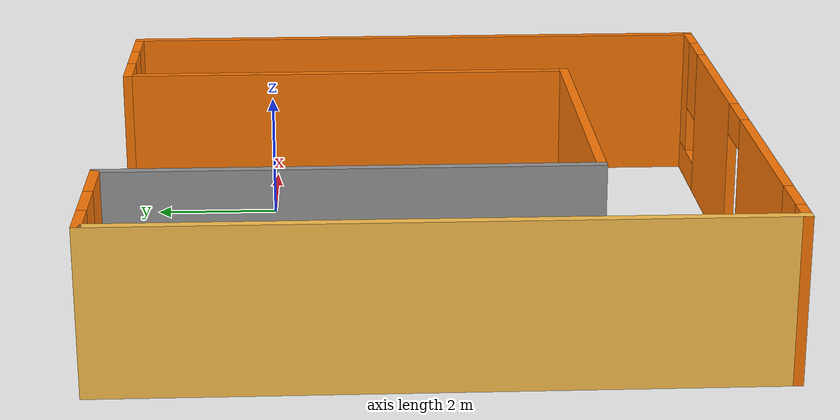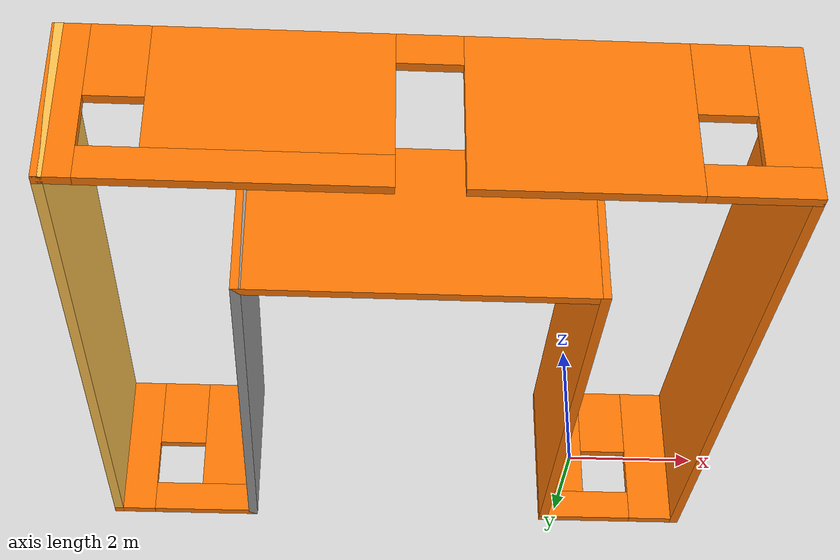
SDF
<?xml version='1.0'?>
<sdf version='1.6'>
  <model name='house'>
    <pose frame=''>-2.72178 -2.50719 0 0 -0 0</pose>
    <link name='Wall_22'>
      <collision name='Wall_22_Collision'>
        <geometry>
          <box>
            <size>10 0.15 2.5</size>
          </box>
        </geometry>
        <pose frame=''>0 0 1.25 0 -0 0</pose>
      </collision>
      <visual name='Wall_22_Visual'>
        <pose frame=''>0 0 1.25 0 -0 0</pose>
        <geometry>
          <box>
            <size>10 0.15 2.5</size>
          </box>
        </geometry>
        <material>
          <script>
            <uri>file://media/materials/scripts/gazebo.material</uri>
            <name>Gazebo/Grey</name>
          </script>
          <ambient>1 0.764706 0.305882 1</ambient>
        </material>
        <meta>
          <layer>0</layer>
        </meta>
      </visual>
      <pose frame=''>-4.92478 -0.000192 0 0 -0 1.5708</pose>
    </link>
    <link name='Wall_30'>
      <pose frame=''>0 -4.925 0 0 -0 3.9e-05</pose>
      <visual name='Wall_30_Visual_0'>
        <pose frame=''>-4.74427 0 1.25 0 -0 0</pose>
        <geometry>
          <box>
            <size>0.511454 0.15 2.5</size>
          </box>
        </geometry>
        <material>
          <script>
            <uri>file://media/materials/scripts/gazebo.material</uri>
            <name>Gazebo/Grey</name>
          </script>
          <ambient>0.996078 0.47451 0.0196078 1</ambient>
        </material>
        <meta>
          <layer>0</layer>
        </meta>
      </visual>
      <collision name='Wall_30_Collision_0'>
        <geometry>
          <box>
            <size>0.511454 0.15 2.5</size>
          </box>
        </geometry>
        <pose frame=''>-4.74427 0 1.25 0 -0 0</pose>
      </collision>
      <visual name='Wall_30_Visual_1'>
        <pose frame=''>1.95041 0 1.25 0 -0 0</pose>
        <geometry>
          <box>
            <size>3.03595 0.15 2.5</size>
          </box>
        </geometry>
        <material>
          <script>
            <uri>file://media/materials/scripts/gazebo.material</uri>
            <name>Gazebo/Grey</name>
          </script>
          <ambient>0.996078 0.47451 0.0196078 1</ambient>
        </material>
        <meta>
          <layer>0</layer>
        </meta>
      </visual>
      <collision name='Wall_30_Collision_1'>
        <geometry>
          <box>
            <size>3.03595 0.15 2.5</size>
          </box>
        </geometry>
        <pose frame=''>1.95041 0 1.25 0 -0 0</pose>
      </collision>
      <visual name='Wall_30_Visual_2'>
        <pose frame=''>-2.47805 0 0.25 0 -0 0</pose>
        <geometry>
          <box>
            <size>4.02099 0.15 0.5</size>
          </box>
        </geometry>
        <material>
          <script>
            <uri>file://media/materials/scripts/gazebo.material</uri>
            <name>Gazebo/Grey</name>
          </script>
          <ambient>0.996078 0.47451 0.0196078 1</ambient>
        </material>
        <meta>
          <layer>0</layer>
        </meta>
      </visual>
      <collision name='Wall_30_Collision_2'>
        <geometry>
          <box>
            <size>4.02099 0.15 0.5</size>
          </box>
        </geometry>
        <pose frame=''>-2.47805 0 0.25 0 -0 0</pose>
      </collision>
      <visual name='Wall_30_Visual_3'>
        <pose frame=''>4.23419 0 0.25 0 -0 0</pose>
        <geometry>
          <box>
            <size>1.53161 0.15 0.5</size>
          </box>
        </geometry>
        <material>
          <script>
            <uri>file://media/materials/scripts/gazebo.material</uri>
            <name>Gazebo/Grey</name>
          </script>
          <ambient>0.996078 0.47451 0.0196078 1</ambient>
        </material>
        <meta>
          <layer>0</layer>
        </meta>
      </visual>
      <collision name='Wall_30_Collision_3'>
        <geometry>
          <box>
            <size>1.53161 0.15 0.5</size>
          </box>
        </geometry>
        <pose frame=''>4.23419 0 0.25 0 -0 0</pose>
      </collision>
      <visual name='Wall_30_Visual_4'>
        <pose frame=''>-2.07805 0 1.5 0 -0 0</pose>
        <geometry>
          <box>
            <size>3.22099 0.15 2</size>
          </box>
        </geometry>
        <material>
          <script>
            <uri>file://media/materials/scripts/gazebo.material</uri>
            <name>Gazebo/Grey</name>
          </script>
          <ambient>0.996078 0.47451 0.0196078 1</ambient>
        </material>
        <meta>
          <layer>0</layer>
        </meta>
      </visual>
      <collision name='Wall_30_Collision_4'>
        <geometry>
          <box>
            <size>3.22099 0.15 2</size>
          </box>
        </geometry>
        <pose frame=''>-2.07805 0 1.5 0 -0 0</pose>
      </collision>
      <visual name='Wall_30_Visual_5'>
        <pose frame=''>-2.07805 0 1.5 0 -0 0</pose>
        <geometry>
          <box>
            <size>3.22099 0.15 2</size>
          </box>
        </geometry>
        <material>
          <script>
            <uri>file://media/materials/scripts/gazebo.material</uri>
            <name>Gazebo/Grey</name>
          </script>
          <ambient>0.996078 0.47451 0.0196078 1</ambient>
        </material>
        <meta>
          <layer>0</layer>
        </meta>
      </visual>
      <collision name='Wall_30_Collision_5'>
        <geometry>
          <box>
            <size>3.22099 0.15 2</size>
          </box>
        </geometry>
        <pose frame=''>-2.07805 0 1.5 0 -0 0</pose>
      </collision>
      <visual name='Wall_30_Visual_6'>
        <pose frame=''>4.63419 0 1.5 0 -0 0</pose>
        <geometry>
          <box>
            <size>0.731615 0.15 2</size>
          </box>
        </geometry>
        <material>
          <script>
            <uri>file://media/materials/scripts/gazebo.material</uri>
            <name>Gazebo/Grey</name>
          </script>
          <ambient>0.996078 0.47451 0.0196078 1</ambient>
        </material>
        <meta>
          <layer>0</layer>
        </meta>
      </visual>
      <collision name='Wall_30_Collision_6'>
        <geometry>
          <box>
            <size>0.731615 0.15 2</size>
          </box>
        </geometry>
        <pose frame=''>4.63419 0 1.5 0 -0 0</pose>
      </collision>
      <visual name='Wall_30_Visual_7'>
        <pose frame=''>-4.08855 0 1.9 0 -0 0</pose>
        <geometry>
          <box>
            <size>0.8 0.15 1.2</size>
          </box>
        </geometry>
        <material>
          <script>
            <uri>file://media/materials/scripts/gazebo.material</uri>
            <name>Gazebo/Grey</name>
          </script>
          <ambient>0.996078 0.47451 0.0196078 1</ambient>
        </material>
        <meta>
          <layer>0</layer>
        </meta>
      </visual>
      <collision name='Wall_30_Collision_7'>
        <geometry>
          <box>
            <size>0.8 0.15 1.2</size>
          </box>
        </geometry>
        <pose frame=''>-4.08855 0 1.9 0 -0 0</pose>
      </collision>
      <visual name='Wall_30_Visual_8'>
        <pose frame=''>3.86838 0 1.9 0 -0 0</pose>
        <geometry>
          <box>
            <size>0.8 0.15 1.2</size>
          </box>
        </geometry>
        <material>
          <script>
            <uri>file://media/materials/scripts/gazebo.material</uri>
            <name>Gazebo/Grey</name>
          </script>
          <ambient>0.996078 0.47451 0.0196078 1</ambient>
        </material>
        <meta>
          <layer>0</layer>
        </meta>
      </visual>
      <collision name='Wall_30_Collision_8'>
        <geometry>
          <box>
            <size>0.8 0.15 1.2</size>
          </box>
        </geometry>
        <pose frame=''>3.86838 0 1.9 0 -0 0</pose>
      </collision>
      <visual name='Wall_30_Visual_9'>
        <pose frame=''>-0.01756 0 2.25 0 -0 0</pose>
        <geometry>
          <box>
            <size>0.9 0.15 0.5</size>
          </box>
        </geometry>
        <material>
          <script>
            <uri>file://media/materials/scripts/gazebo.material</uri>
            <name>Gazebo/Grey</name>
          </script>
          <ambient>0.996078 0.47451 0.0196078 1</ambient>
        </material>
        <meta>
          <layer>0</layer>
        </meta>
      </visual>
      <collision name='Wall_30_Collision_9'>
        <geometry>
          <box>
            <size>0.9 0.15 0.5</size>
          </box>
        </geometry>
        <pose frame=''>-0.01756 0 2.25 0 -0 0</pose>
      </collision>
      <visual name='Wall_30_Visual_10'>
        <pose frame=''>-0.01756 0 2.25 0 -0 0</pose>
        <geometry>
          <box>
            <size>0.9 0.15 0.5</size>
          </box>
        </geometry>
        <material>
          <script>
            <uri>file://media/materials/scripts/gazebo.material</uri>
            <name>Gazebo/Grey</name>
          </script>
          <ambient>0.996078 0.47451 0.0196078 1</ambient>
        </material>
        <meta>
          <layer>0</layer>
        </meta>
      </visual>
      <collision name='Wall_30_Collision_10'>
        <geometry>
          <box>
            <size>0.9 0.15 0.5</size>
          </box>
        </geometry>
        <pose frame=''>-0.01756 0 2.25 0 -0 0</pose>
      </collision>
    </link>
    <link name='Wall_32'>
      <collision name='Wall_32_Collision'>
        <geometry>
          <box>
            <size>10 0.15 2.5</size>
          </box>
        </geometry>
        <pose frame=''>0 0 1.25 0 -0 0</pose>
      </collision>
      <visual name='Wall_32_Visual'>
        <pose frame=''>0 0 1.25 0 -0 0</pose>
        <geometry>
          <box>
            <size>10 0.15 2.5</size>
          </box>
        </geometry>
        <material>
          <script>
            <uri>file://media/materials/scripts/gazebo.material</uri>
            <name>Gazebo/Grey</name>
          </script>
          <ambient>0.996078 0.47451 0.0196078 1</ambient>
        </material>
        <meta>
          <layer>0</layer>
        </meta>
      </visual>
      <pose frame=''>4.92478 0.000195 0 0 -0 1.5708</pose>
    </link>
    <link name='Wall_36'>
      <pose frame=''>-3.74978 4.92481 0 0 -0 0</pose>
      <visual name='Wall_36_Visual_0'>
        <pose frame=''>-0.896568 0 1.25 0 -0 0</pose>
        <geometry>
          <box>
            <size>0.706864 0.15 2.5</size>
          </box>
        </geometry>
        <material>
          <script>
            <uri>file://media/materials/scripts/gazebo.material</uri>
            <name>Gazebo/Grey</name>
          </script>
          <ambient>0.996078 0.47451 0.0196078 1</ambient>
        </material>
        <meta>
          <layer>0</layer>
        </meta>
      </visual>
      <collision name='Wall_36_Collision_0'>
        <geometry>
          <box>
            <size>0.706864 0.15 2.5</size>
          </box>
        </geometry>
        <pose frame=''>-0.896568 0 1.25 0 -0 0</pose>
      </collision>
      <visual name='Wall_36_Visual_1'>
        <pose frame=''>0.353432 0 0.25 0 -0 0</pose>
        <geometry>
          <box>
            <size>1.79314 0.15 0.5</size>
          </box>
        </geometry>
        <material>
          <script>
            <uri>file://media/materials/scripts/gazebo.material</uri>
            <name>Gazebo/Grey</name>
          </script>
          <ambient>0.996078 0.47451 0.0196078 1</ambient>
        </material>
        <meta>
          <layer>0</layer>
        </meta>
      </visual>
      <collision name='Wall_36_Collision_1'>
        <geometry>
          <box>
            <size>1.79314 0.15 0.5</size>
          </box>
        </geometry>
        <pose frame=''>0.353432 0 0.25 0 -0 0</pose>
      </collision>
      <visual name='Wall_36_Visual_2'>
        <pose frame=''>0.753432 0 1.5 0 -0 0</pose>
        <geometry>
          <box>
            <size>0.993136 0.15 2</size>
          </box>
        </geometry>
        <material>
          <script>
            <uri>file://media/materials/scripts/gazebo.material</uri>
            <name>Gazebo/Grey</name>
          </script>
          <ambient>0.996078 0.47451 0.0196078 1</ambient>
        </material>
        <meta>
          <layer>0</layer>
        </meta>
      </visual>
      <collision name='Wall_36_Collision_2'>
        <geometry>
          <box>
            <size>0.993136 0.15 2</size>
          </box>
        </geometry>
        <pose frame=''>0.753432 0 1.5 0 -0 0</pose>
      </collision>
      <visual name='Wall_36_Visual_3'>
        <pose frame=''>-0.143136 0 1.9 0 -0 0</pose>
        <geometry>
          <box>
            <size>0.8 0.15 1.2</size>
          </box>
        </geometry>
        <material>
          <script>
            <uri>file://media/materials/scripts/gazebo.material</uri>
            <name>Gazebo/Grey</name>
          </script>
          <ambient>0.996078 0.47451 0.0196078 1</ambient>
        </material>
        <meta>
          <layer>0</layer>
        </meta>
      </visual>
      <collision name='Wall_36_Collision_3'>
        <geometry>
          <box>
            <size>0.8 0.15 1.2</size>
          </box>
        </geometry>
        <pose frame=''>-0.143136 0 1.9 0 -0 0</pose>
      </collision>
    </link>
    <link name='Wall_38'>
      <pose frame=''>3.74978 4.9252 0 0 -0 3.14159</pose>
      <visual name='Wall_38_Visual_0'>
        <pose frame=''>-0.802959 0 1.25 0 -0 0</pose>
        <geometry>
          <box>
            <size>0.894081 0.15 2.5</size>
          </box>
        </geometry>
        <material>
          <script>
            <uri>file://media/materials/scripts/gazebo.material</uri>
            <name>Gazebo/Grey</name>
          </script>
          <ambient>0.996078 0.47451 0.0196078 1</ambient>
        </material>
        <meta>
          <layer>0</layer>
        </meta>
      </visual>
      <collision name='Wall_38_Collision_0'>
        <geometry>
          <box>
            <size>0.894081 0.15 2.5</size>
          </box>
        </geometry>
        <pose frame=''>-0.802959 0 1.25 0 -0 0</pose>
      </collision>
      <visual name='Wall_38_Visual_1'>
        <pose frame=''>0.447041 0 0.25 0 -0 0</pose>
        <geometry>
          <box>
            <size>1.60592 0.15 0.5</size>
          </box>
        </geometry>
        <material>
          <script>
            <uri>file://media/materials/scripts/gazebo.material</uri>
            <name>Gazebo/Grey</name>
          </script>
          <ambient>0.996078 0.47451 0.0196078 1</ambient>
        </material>
        <meta>
          <layer>0</layer>
        </meta>
      </visual>
      <collision name='Wall_38_Collision_1'>
        <geometry>
          <box>
            <size>1.60592 0.15 0.5</size>
          </box>
        </geometry>
        <pose frame=''>0.447041 0 0.25 0 -0 0</pose>
      </collision>
      <visual name='Wall_38_Visual_2'>
        <pose frame=''>0.847041 0 1.5 0 -0 0</pose>
        <geometry>
          <box>
            <size>0.805919 0.15 2</size>
          </box>
        </geometry>
        <material>
          <script>
            <uri>file://media/materials/scripts/gazebo.material</uri>
            <name>Gazebo/Grey</name>
          </script>
          <ambient>0.996078 0.47451 0.0196078 1</ambient>
        </material>
        <meta>
          <layer>0</layer>
        </meta>
      </visual>
      <collision name='Wall_38_Collision_2'>
        <geometry>
          <box>
            <size>0.805919 0.15 2</size>
          </box>
        </geometry>
        <pose frame=''>0.847041 0 1.5 0 -0 0</pose>
      </collision>
      <visual name='Wall_38_Visual_3'>
        <pose frame=''>0.044081 0 1.9 0 -0 0</pose>
        <geometry>
          <box>
            <size>0.8 0.15 1.2</size>
          </box>
        </geometry>
        <material>
          <script>
            <uri>file://media/materials/scripts/gazebo.material</uri>
            <name>Gazebo/Grey</name>
          </script>
          <ambient>0.996078 0.47451 0.0196078 1</ambient>
        </material>
        <meta>
          <layer>0</layer>
        </meta>
      </visual>
      <collision name='Wall_38_Collision_3'>
        <geometry>
          <box>
            <size>0.8 0.15 1.2</size>
          </box>
        </geometry>
        <pose frame=''>0.044081 0 1.9 0 -0 0</pose>
      </collision>
    </link>
    <link name='Wall_40'>
      <collision name='Wall_40_Collision'>
        <geometry>
          <box>
            <size>7.5 0.15 2.5</size>
          </box>
        </geometry>
        <pose frame=''>0 0 1.25 0 -0 0</pose>
      </collision>
      <visual name='Wall_40_Visual'>
        <pose frame=''>0 0 1.25 0 -0 0</pose>
        <geometry>
          <box>
            <size>7.5 0.15 2.5</size>
          </box>
        </geometry>
        <material>
          <script>
            <uri>file://media/materials/scripts/gazebo.material</uri>
            <name>Gazebo/Grey</name>
          </script>
          <ambient>1 1 1 1</ambient>
        </material>
        <meta>
          <layer>0</layer>
        </meta>
      </visual>
      <pose frame=''>-2.57478 1.24981 0 0 0 -1.5708</pose>
    </link>
    <link name='Wall_44'>
      <collision name='Wall_44_Collision'>
        <geometry>
          <box>
            <size>7.5 0.15 2.5</size>
          </box>
        </geometry>
        <pose frame=''>0 0 1.25 0 -0 0</pose>
      </collision>
      <visual name='Wall_44_Visual'>
        <pose frame=''>0 0 1.25 0 -0 0</pose>
        <geometry>
          <box>
            <size>7.5 0.15 2.5</size>
          </box>
        </geometry>
        <material>
          <script>
            <uri>file://media/materials/scripts/gazebo.material</uri>
            <name>Gazebo/Grey</name>
          </script>
          <ambient>0.996078 0.47451 0.0196078 1</ambient>
        </material>
        <meta>
          <layer>0</layer>
        </meta>
      </visual>
      <pose frame=''>2.57478 1.25019 0 0 0 -1.5708</pose>
    </link>
    <link name='Wall_46'>
      <collision name='Wall_46_Collision'>
        <geometry>
          <box>
            <size>5.29956 0.15 2.5</size>
          </box>
        </geometry>
        <pose frame=''>0 0 1.25 0 -0 0</pose>
      </collision>
      <visual name='Wall_46_Visual'>
        <pose frame=''>0 0 1.25 0 -0 0</pose>
        <geometry>
          <box>
            <size>5.29956 0.15 2.5</size>
          </box>
        </geometry>
        <material>
          <script>
            <uri>file://media/materials/scripts/gazebo.material</uri>
            <name>Gazebo/Grey</name>
          </script>
          <ambient>0.996078 0.47451 0.0196078 1</ambient>
        </material>
        <meta>
          <layer>0</layer>
        </meta>
      </visual>
      <pose frame=''>0 -2.425 0 0 -0 7.5e-05</pose>
    </link>
    <static>1</static>
  </model>
</sdf>
